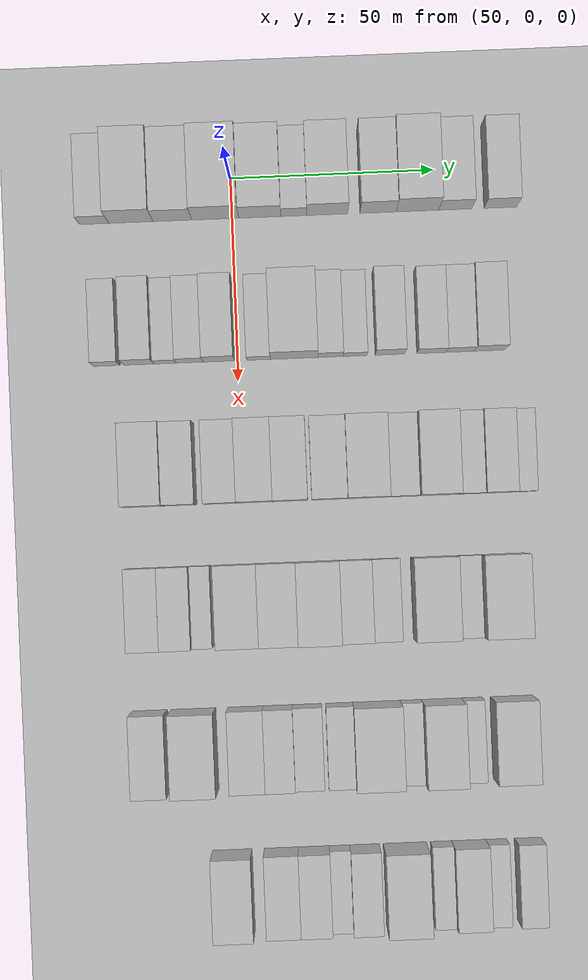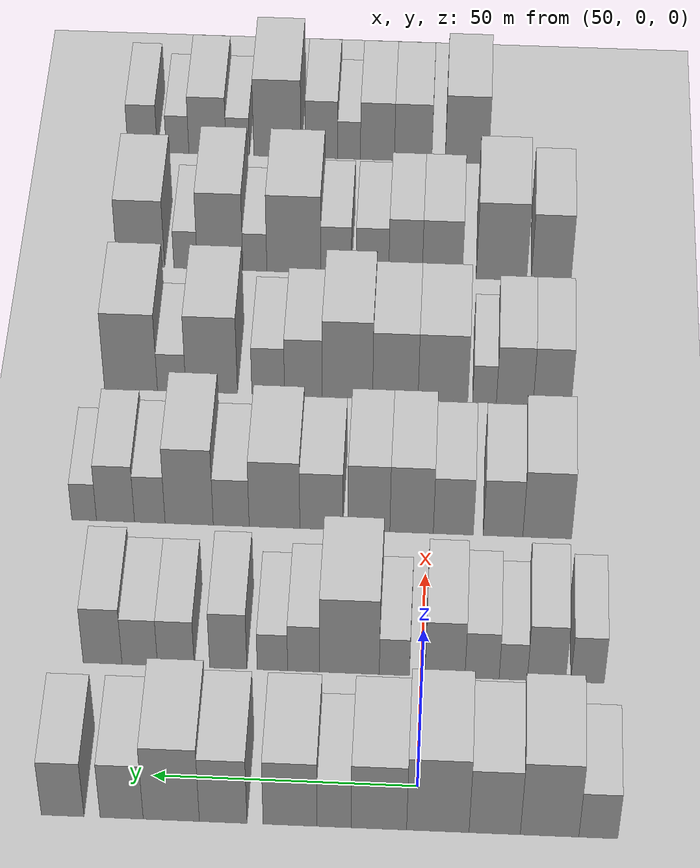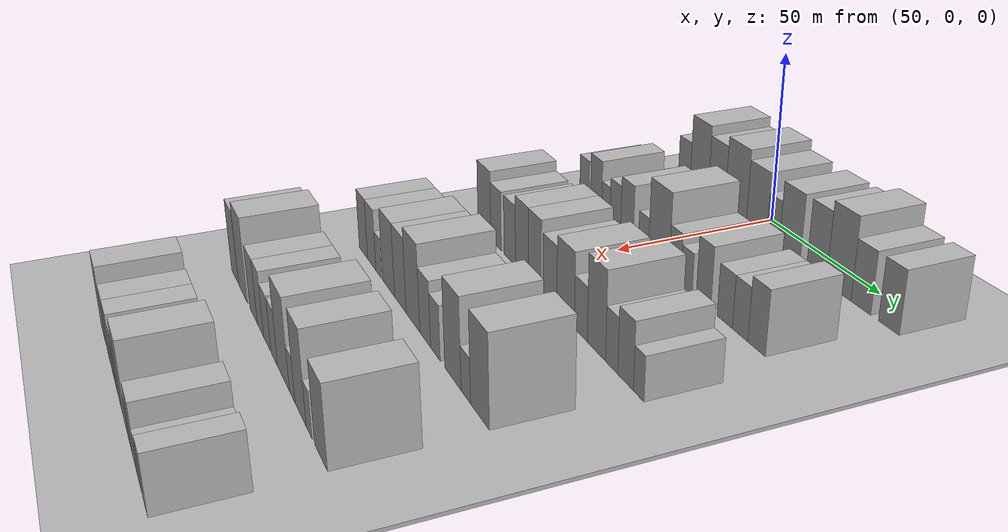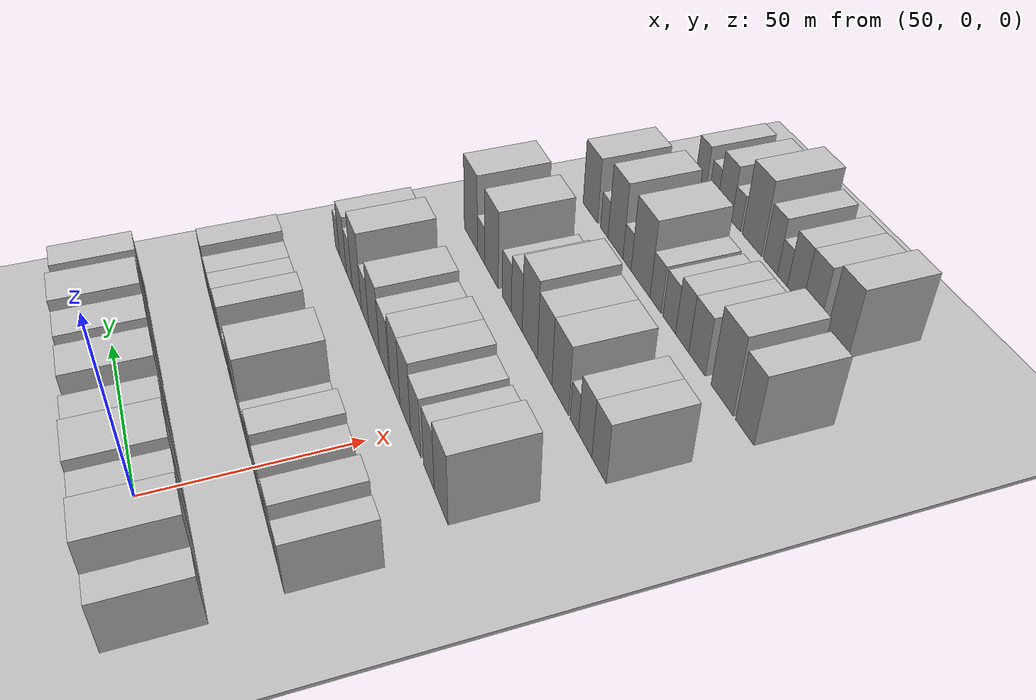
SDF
<sdf version="1.6">
 <world name="default">
  <include><name>ground_plane_1</name><uri>model://HANNAS_ground_plane</uri></include>
  <include>
   <name>ground_plane_2</name>
   <uri>model://HANNAS_ground_plane</uri>
   <pose>100 0 0  0 0 0</pose>
  </include>
  <model name="building_57">
   <static>1</static>
   <pose>50.0000 -33.7795 0 0.000000 0.000000 0.000000</pose>
   <link name="link">
    <pose>0 0 7.50 0 0 0</pose>
    <collision name="collision"><geometry><box><size>20.0000 7.2155 15.0000</size></box></geometry></collision>
    <visual name="visual">
     <cast_shadows>0</cast_shadows>
     <geometry><box><size>20.0000 7.2155 15.0000</size></box></geometry>
     <material>
      <script>
       <uri>model://HANNAS_wall/materials/scripts</uri>
       <uri>model://HANNAS_wall/materials/textures</uri>
       <name>vrc/HANNAS_wall</name>
      </script>
     </material>
    </visual>
   </link>
  </model>
  <model name="building_58">
   <static>1</static>
   <pose>50.0000 -24.7381 0 0.000000 0.000000 0.000000</pose>
   <link name="link">
    <pose>0 0 12.00 0 0 0</pose>
    <collision name="collision"><geometry><box><size>20.0000 10.8673 24.0000</size></box></geometry></collision>
    <visual name="visual">
     <cast_shadows>0</cast_shadows>
     <geometry><box><size>20.0000 10.8673 24.0000</size></box></geometry>
     <material>
      <script>
       <uri>model://HANNAS_wall/materials/scripts</uri>
       <uri>model://HANNAS_wall/materials/textures</uri>
       <name>vrc/HANNAS_wall</name>
      </script>
     </material>
    </visual>
   </link>
  </model>
  <model name="building_59">
   <static>1</static>
   <pose>50.0000 -14.5444 0 0.000000 0.000000 0.000000</pose>
   <link name="link">
    <pose>0 0 10.50 0 0 0</pose>
    <collision name="collision"><geometry><box><size>20.0000 9.5200 21.0000</size></box></geometry></collision>
    <visual name="visual">
     <cast_shadows>0</cast_shadows>
     <geometry><box><size>20.0000 9.5200 21.0000</size></box></geometry>
     <material>
      <script>
       <uri>model://HANNAS_wall/materials/scripts</uri>
       <uri>model://HANNAS_wall/materials/textures</uri>
       <name>vrc/HANNAS_wall</name>
      </script>
     </material>
    </visual>
   </link>
  </model>
  <model name="building_60">
   <static>1</static>
   <pose>50.0000 -3.9836 0 0.000000 0.000000 0.000000</pose>
   <link name="link">
    <pose>0 0 12.00 0 0 0</pose>
    <collision name="collision"><geometry><box><size>20.0000 11.6017 24.0000</size></box></geometry></collision>
    <visual name="visual">
     <cast_shadows>0</cast_shadows>
     <geometry><box><size>20.0000 11.6017 24.0000</size></box></geometry>
     <material>
      <script>
       <uri>model://HANNAS_wall/materials/scripts</uri>
       <uri>model://HANNAS_wall/materials/textures</uri>
       <name>vrc/HANNAS_wall</name>
      </script>
     </material>
    </visual>
   </link>
  </model>
  <model name="building_61">
   <static>1</static>
   <pose>50.0000 6.9874 0 0.000000 0.000000 0.000000</pose>
   <link name="link">
    <pose>0 0 10.50 0 0 0</pose>
    <collision name="collision"><geometry><box><size>20.0000 10.3402 21.0000</size></box></geometry></collision>
    <visual name="visual">
     <cast_shadows>0</cast_shadows>
     <geometry><box><size>20.0000 10.3402 21.0000</size></box></geometry>
     <material>
      <script>
       <uri>model://HANNAS_wall/materials/scripts</uri>
       <uri>model://HANNAS_wall/materials/textures</uri>
       <name>vrc/HANNAS_wall</name>
      </script>
     </material>
    </visual>
   </link>
  </model>
  <model name="building_62">
   <static>1</static>
   <pose>50.0000 15.3178 0 0.000000 0.000000 0.000000</pose>
   <link name="link">
    <pose>0 0 7.50 0 0 0</pose>
    <collision name="collision"><geometry><box><size>20.0000 6.3207 15.0000</size></box></geometry></collision>
    <visual name="visual">
     <cast_shadows>0</cast_shadows>
     <geometry><box><size>20.0000 6.3207 15.0000</size></box></geometry>
     <material>
      <script>
       <uri>model://HANNAS_wall/materials/scripts</uri>
       <uri>model://HANNAS_wall/materials/textures</uri>
       <name>vrc/HANNAS_wall</name>
      </script>
     </material>
    </visual>
   </link>
  </model>
  <model name="building_63">
   <static>1</static>
   <pose>50.0000 23.5081 0 0.000000 0.000000 0.000000</pose>
   <link name="link">
    <pose>0 0 10.50 0 0 0</pose>
    <collision name="collision"><geometry><box><size>20.0000 10.0599 21.0000</size></box></geometry></collision>
    <visual name="visual">
     <cast_shadows>0</cast_shadows>
     <geometry><box><size>20.0000 10.0599 21.0000</size></box></geometry>
     <material>
      <script>
       <uri>model://HANNAS_wall/materials/scripts</uri>
       <uri>model://HANNAS_wall/materials/textures</uri>
       <name>vrc/HANNAS_wall</name>
      </script>
     </material>
    </visual>
   </link>
  </model>
  <model name="building_64">
   <static>1</static>
   <pose>50.0000 35.9890 0 0.000000 0.000000 0.000000</pose>
   <link name="link">
    <pose>0 0 10.50 0 0 0</pose>
    <collision name="collision"><geometry><box><size>20.0000 8.9018 21.0000</size></box></geometry></collision>
    <visual name="visual">
     <cast_shadows>0</cast_shadows>
     <geometry><box><size>20.0000 8.9018 21.0000</size></box></geometry>
     <material>
      <script>
       <uri>model://HANNAS_wall/materials/scripts</uri>
       <uri>model://HANNAS_wall/materials/textures</uri>
       <name>vrc/HANNAS_wall</name>
      </script>
     </material>
    </visual>
   </link>
  </model>
  <model name="building_65">
   <static>1</static>
   <pose>50.0000 45.6892 0 0.000000 0.000000 0.000000</pose>
   <link name="link">
    <pose>0 0 12.00 0 0 0</pose>
    <collision name="collision"><geometry><box><size>20.0000 10.4987 24.0000</size></box></geometry></collision>
    <visual name="visual">
     <cast_shadows>0</cast_shadows>
     <geometry><box><size>20.0000 10.4987 24.0000</size></box></geometry>
     <material>
      <script>
       <uri>model://HANNAS_wall/materials/scripts</uri>
       <uri>model://HANNAS_wall/materials/textures</uri>
       <name>vrc/HANNAS_wall</name>
      </script>
     </material>
    </visual>
   </link>
  </model>
  <model name="building_66">
   <static>1</static>
   <pose>50.0000 54.9732 0 0.000000 0.000000 0.000000</pose>
   <link name="link">
    <pose>0 0 9.00 0 0 0</pose>
    <collision name="collision"><geometry><box><size>20.0000 8.0693 18.0000</size></box></geometry></collision>
    <visual name="visual">
     <cast_shadows>0</cast_shadows>
     <geometry><box><size>20.0000 8.0693 18.0000</size></box></geometry>
     <material>
      <script>
       <uri>model://HANNAS_wall/materials/scripts</uri>
       <uri>model://HANNAS_wall/materials/textures</uri>
       <name>vrc/HANNAS_wall</name>
      </script>
     </material>
    </visual>
   </link>
  </model>
  <model name="building_67">
   <static>1</static>
   <pose>50.0000 66.0095 0 0.000000 0.000000 0.000000</pose>
   <link name="link">
    <pose>0 0 9.00 0 0 0</pose>
    <collision name="collision"><geometry><box><size>20.0000 8.0032 18.0000</size></box></geometry></collision>
    <visual name="visual">
     <cast_shadows>0</cast_shadows>
     <geometry><box><size>20.0000 8.0032 18.0000</size></box></geometry>
     <material>
      <script>
       <uri>model://HANNAS_wall/materials/scripts</uri>
       <uri>model://HANNAS_wall/materials/textures</uri>
       <name>vrc/HANNAS_wall</name>
      </script>
     </material>
    </visual>
   </link>
  </model>
  <model name="building_188">
   <static>1</static>
   <pose>85.0000 -31.9822 0 0.000000 0.000000 0.000000</pose>
   <link name="link">
    <pose>0 0 7.50 0 0 0</pose>
    <collision name="collision"><geometry><box><size>20.0000 6.4308 15.0000</size></box></geometry></collision>
    <visual name="visual">
     <cast_shadows>0</cast_shadows>
     <geometry><box><size>20.0000 6.4308 15.0000</size></box></geometry>
     <material>
      <script>
       <uri>model://HANNAS_wall/materials/scripts</uri>
       <uri>model://HANNAS_wall/materials/textures</uri>
       <name>vrc/HANNAS_wall</name>
      </script>
     </material>
    </visual>
   </link>
  </model>
  <model name="building_189">
   <static>1</static>
   <pose>85.0000 -24.0772 0 0.000000 0.000000 0.000000</pose>
   <link name="link">
    <pose>0 0 9.00 0 0 0</pose>
    <collision name="collision"><geometry><box><size>20.0000 7.3792 18.0000</size></box></geometry></collision>
    <visual name="visual">
     <cast_shadows>0</cast_shadows>
     <geometry><box><size>20.0000 7.3792 18.0000</size></box></geometry>
     <material>
      <script>
       <uri>model://HANNAS_wall/materials/scripts</uri>
       <uri>model://HANNAS_wall/materials/textures</uri>
       <name>vrc/HANNAS_wall</name>
      </script>
     </material>
    </visual>
   </link>
  </model>
  <model name="building_190">
   <static>1</static>
   <pose>85.0000 -17.6620 0 0.000000 0.000000 0.000000</pose>
   <link name="link">
    <pose>0 0 6.00 0 0 0</pose>
    <collision name="collision"><geometry><box><size>20.0000 5.4511 12.0000</size></box></geometry></collision>
    <visual name="visual">
     <cast_shadows>0</cast_shadows>
     <geometry><box><size>20.0000 5.4511 12.0000</size></box></geometry>
     <material>
      <script>
       <uri>model://HANNAS_wall/materials/scripts</uri>
       <uri>model://HANNAS_wall/materials/textures</uri>
       <name>vrc/HANNAS_wall</name>
      </script>
     </material>
    </visual>
   </link>
  </model>
  <model name="building_191">
   <static>1</static>
   <pose>85.0000 -11.6268 0 0.000000 0.000000 0.000000</pose>
   <link name="link">
    <pose>0 0 7.50 0 0 0</pose>
    <collision name="collision"><geometry><box><size>20.0000 6.6194 15.0000</size></box></geometry></collision>
    <visual name="visual">
     <cast_shadows>0</cast_shadows>
     <geometry><box><size>20.0000 6.6194 15.0000</size></box></geometry>
     <material>
      <script>
       <uri>model://HANNAS_wall/materials/scripts</uri>
       <uri>model://HANNAS_wall/materials/textures</uri>
       <name>vrc/HANNAS_wall</name>
      </script>
     </material>
    </visual>
   </link>
  </model>
  <model name="building_192">
   <static>1</static>
   <pose>85.0000 -4.4633 0 0.000000 0.000000 0.000000</pose>
   <link name="link">
    <pose>0 0 9.00 0 0 0</pose>
    <collision name="collision"><geometry><box><size>20.0000 7.7076 18.0000</size></box></geometry></collision>
    <visual name="visual">
     <cast_shadows>0</cast_shadows>
     <geometry><box><size>20.0000 7.7076 18.0000</size></box></geometry>
     <material>
      <script>
       <uri>model://HANNAS_wall/materials/scripts</uri>
       <uri>model://HANNAS_wall/materials/textures</uri>
       <name>vrc/HANNAS_wall</name>
      </script>
     </material>
    </visual>
   </link>
  </model>
  <model name="building_193">
   <static>1</static>
   <pose>85.0000 5.3162 0 0.000000 0.000000 0.000000</pose>
   <link name="link">
    <pose>0 0 6.00 0 0 0</pose>
    <collision name="collision"><geometry><box><size>20.0000 5.8512 12.0000</size></box></geometry></collision>
    <visual name="visual">
     <cast_shadows>0</cast_shadows>
     <geometry><box><size>20.0000 5.8512 12.0000</size></box></geometry>
     <material>
      <script>
       <uri>model://HANNAS_wall/materials/scripts</uri>
       <uri>model://HANNAS_wall/materials/textures</uri>
       <name>vrc/HANNAS_wall</name>
      </script>
     </material>
    </visual>
   </link>
  </model>
  <model name="building_194">
   <static>1</static>
   <pose>85.0000 14.0239 0 0.000000 0.000000 0.000000</pose>
   <link name="link">
    <pose>0 0 12.00 0 0 0</pose>
    <collision name="collision"><geometry><box><size>20.0000 11.5642 24.0000</size></box></geometry></collision>
    <visual name="visual">
     <cast_shadows>0</cast_shadows>
     <geometry><box><size>20.0000 11.5642 24.0000</size></box></geometry>
     <material>
      <script>
       <uri>model://HANNAS_wall/materials/scripts</uri>
       <uri>model://HANNAS_wall/materials/textures</uri>
       <name>vrc/HANNAS_wall</name>
      </script>
     </material>
    </visual>
   </link>
  </model>
  <model name="building_195">
   <static>1</static>
   <pose>85.0000 22.8988 0 0.000000 0.000000 0.000000</pose>
   <link name="link">
    <pose>0 0 7.50 0 0 0</pose>
    <collision name="collision"><geometry><box><size>20.0000 6.1858 15.0000</size></box></geometry></collision>
    <visual name="visual">
     <cast_shadows>0</cast_shadows>
     <geometry><box><size>20.0000 6.1858 15.0000</size></box></geometry>
     <material>
      <script>
       <uri>model://HANNAS_wall/materials/scripts</uri>
       <uri>model://HANNAS_wall/materials/textures</uri>
       <name>vrc/HANNAS_wall</name>
      </script>
     </material>
    </visual>
   </link>
  </model>
  <model name="building_196">
   <static>1</static>
   <pose>85.0000 28.9388 0 0.000000 0.000000 0.000000</pose>
   <link name="link">
    <pose>0 0 6.00 0 0 0</pose>
    <collision name="collision"><geometry><box><size>20.0000 5.8942 12.0000</size></box></geometry></collision>
    <visual name="visual">
     <cast_shadows>0</cast_shadows>
     <geometry><box><size>20.0000 5.8942 12.0000</size></box></geometry>
     <material>
      <script>
       <uri>model://HANNAS_wall/materials/scripts</uri>
       <uri>model://HANNAS_wall/materials/textures</uri>
       <name>vrc/HANNAS_wall</name>
      </script>
     </material>
    </visual>
   </link>
  </model>
  <model name="building_197">
   <static>1</static>
   <pose>85.0000 37.4988 0 0.000000 0.000000 0.000000</pose>
   <link name="link">
    <pose>0 0 9.00 0 0 0</pose>
    <collision name="collision"><geometry><box><size>20.0000 7.2258 18.0000</size></box></geometry></collision>
    <visual name="visual">
     <cast_shadows>0</cast_shadows>
     <geometry><box><size>20.0000 7.2258 18.0000</size></box></geometry>
     <material>
      <script>
       <uri>model://HANNAS_wall/materials/scripts</uri>
       <uri>model://HANNAS_wall/materials/textures</uri>
       <name>vrc/HANNAS_wall</name>
      </script>
     </material>
    </visual>
   </link>
  </model>
  <model name="building_198">
   <static>1</static>
   <pose>85.0000 47.6861 0 0.000000 0.000000 0.000000</pose>
   <link name="link">
    <pose>0 0 7.50 0 0 0</pose>
    <collision name="collision"><geometry><box><size>20.0000 7.1488 15.0000</size></box></geometry></collision>
    <visual name="visual">
     <cast_shadows>0</cast_shadows>
     <geometry><box><size>20.0000 7.1488 15.0000</size></box></geometry>
     <material>
      <script>
       <uri>model://HANNAS_wall/materials/scripts</uri>
       <uri>model://HANNAS_wall/materials/textures</uri>
       <name>vrc/HANNAS_wall</name>
      </script>
     </material>
    </visual>
   </link>
  </model>
  <model name="building_199">
   <static>1</static>
   <pose>85.0000 54.7174 0 0.000000 0.000000 0.000000</pose>
   <link name="link">
    <pose>0 0 7.50 0 0 0</pose>
    <collision name="collision"><geometry><box><size>20.0000 6.9136 15.0000</size></box></geometry></collision>
    <visual name="visual">
     <cast_shadows>0</cast_shadows>
     <geometry><box><size>20.0000 6.9136 15.0000</size></box></geometry>
     <material>
      <script>
       <uri>model://HANNAS_wall/materials/scripts</uri>
       <uri>model://HANNAS_wall/materials/textures</uri>
       <name>vrc/HANNAS_wall</name>
      </script>
     </material>
    </visual>
   </link>
  </model>
  <model name="building_200">
   <static>1</static>
   <pose>85.0000 61.9534 0 0.000000 0.000000 0.000000</pose>
   <link name="link">
    <pose>0 0 9.00 0 0 0</pose>
    <collision name="collision"><geometry><box><size>20.0000 7.5585 18.0000</size></box></geometry></collision>
    <visual name="visual">
     <cast_shadows>0</cast_shadows>
     <geometry><box><size>20.0000 7.5585 18.0000</size></box></geometry>
     <material>
      <script>
       <uri>model://HANNAS_wall/materials/scripts</uri>
       <uri>model://HANNAS_wall/materials/textures</uri>
       <name>vrc/HANNAS_wall</name>
      </script>
     </material>
    </visual>
   </link>
  </model>
  <model name="building_317">
   <static>1</static>
   <pose>120.0000 -24.1386 0 0.000000 0.000000 0.000000</pose>
   <link name="link">
    <pose>0 0 10.50 0 0 0</pose>
    <collision name="collision"><geometry><box><size>20.0000 9.7765 21.0000</size></box></geometry></collision>
    <visual name="visual">
     <cast_shadows>0</cast_shadows>
     <geometry><box><size>20.0000 9.7765 21.0000</size></box></geometry>
     <material>
      <script>
       <uri>model://HANNAS_wall/materials/scripts</uri>
       <uri>model://HANNAS_wall/materials/textures</uri>
       <name>vrc/HANNAS_wall</name>
      </script>
     </material>
    </visual>
   </link>
  </model>
  <model name="building_318">
   <static>1</static>
   <pose>120.0000 -15.2830 0 0.000000 0.000000 0.000000</pose>
   <link name="link">
    <pose>0 0 9.00 0 0 0</pose>
    <collision name="collision"><geometry><box><size>20.0000 7.9347 18.0000</size></box></geometry></collision>
    <visual name="visual">
     <cast_shadows>0</cast_shadows>
     <geometry><box><size>20.0000 7.9347 18.0000</size></box></geometry>
     <material>
      <script>
       <uri>model://HANNAS_wall/materials/scripts</uri>
       <uri>model://HANNAS_wall/materials/textures</uri>
       <name>vrc/HANNAS_wall</name>
      </script>
     </material>
    </visual>
   </link>
  </model>
  <model name="building_319">
   <static>1</static>
   <pose>120.0000 -5.3021 0 0.000000 0.000000 0.000000</pose>
   <link name="link">
    <pose>0 0 9.00 0 0 0</pose>
    <collision name="collision"><geometry><box><size>20.0000 8.0272 18.0000</size></box></geometry></collision>
    <visual name="visual">
     <cast_shadows>0</cast_shadows>
     <geometry><box><size>20.0000 8.0272 18.0000</size></box></geometry>
     <material>
      <script>
       <uri>model://HANNAS_wall/materials/scripts</uri>
       <uri>model://HANNAS_wall/materials/textures</uri>
       <name>vrc/HANNAS_wall</name>
      </script>
     </material>
    </visual>
   </link>
  </model>
  <model name="building_320">
   <static>1</static>
   <pose>120.0000 3.0778 0 0.000000 0.000000 0.000000</pose>
   <link name="link">
    <pose>0 0 10.50 0 0 0</pose>
    <collision name="collision"><geometry><box><size>20.0000 8.7325 21.0000</size></box></geometry></collision>
    <visual name="visual">
     <cast_shadows>0</cast_shadows>
     <geometry><box><size>20.0000 8.7325 21.0000</size></box></geometry>
     <material>
      <script>
       <uri>model://HANNAS_wall/materials/scripts</uri>
       <uri>model://HANNAS_wall/materials/textures</uri>
       <name>vrc/HANNAS_wall</name>
      </script>
     </material>
    </visual>
   </link>
  </model>
  <model name="building_321">
   <static>1</static>
   <pose>120.0000 11.6708 0 0.000000 0.000000 0.000000</pose>
   <link name="link">
    <pose>0 0 10.50 0 0 0</pose>
    <collision name="collision"><geometry><box><size>20.0000 8.4535 21.0000</size></box></geometry></collision>
    <visual name="visual">
     <cast_shadows>0</cast_shadows>
     <geometry><box><size>20.0000 8.4535 21.0000</size></box></geometry>
     <material>
      <script>
       <uri>model://HANNAS_wall/materials/scripts</uri>
       <uri>model://HANNAS_wall/materials/textures</uri>
       <name>vrc/HANNAS_wall</name>
      </script>
     </material>
    </visual>
   </link>
  </model>
  <model name="building_322">
   <static>1</static>
   <pose>120.0000 21.2271 0 0.000000 0.000000 0.000000</pose>
   <link name="link">
    <pose>0 0 9.00 0 0 0</pose>
    <collision name="collision"><geometry><box><size>20.0000 8.6592 18.0000</size></box></geometry></collision>
    <visual name="visual">
     <cast_shadows>0</cast_shadows>
     <geometry><box><size>20.0000 8.6592 18.0000</size></box></geometry>
     <material>
      <script>
       <uri>model://HANNAS_wall/materials/scripts</uri>
       <uri>model://HANNAS_wall/materials/textures</uri>
       <name>vrc/HANNAS_wall</name>
      </script>
     </material>
    </visual>
   </link>
  </model>
  <model name="building_323">
   <static>1</static>
   <pose>120.0000 30.6602 0 0.000000 0.000000 0.000000</pose>
   <link name="link">
    <pose>0 0 10.50 0 0 0</pose>
    <collision name="collision"><geometry><box><size>20.0000 10.2070 21.0000</size></box></geometry></collision>
    <visual name="visual">
     <cast_shadows>0</cast_shadows>
     <geometry><box><size>20.0000 10.2070 21.0000</size></box></geometry>
     <material>
      <script>
       <uri>model://HANNAS_wall/materials/scripts</uri>
       <uri>model://HANNAS_wall/materials/textures</uri>
       <name>vrc/HANNAS_wall</name>
      </script>
     </material>
    </visual>
   </link>
  </model>
  <model name="building_324">
   <static>1</static>
   <pose>120.0000 39.3857 0 0.000000 0.000000 0.000000</pose>
   <link name="link">
    <pose>0 0 7.50 0 0 0</pose>
    <collision name="collision"><geometry><box><size>20.0000 7.2439 15.0000</size></box></geometry></collision>
    <visual name="visual">
     <cast_shadows>0</cast_shadows>
     <geometry><box><size>20.0000 7.2439 15.0000</size></box></geometry>
     <material>
      <script>
       <uri>model://HANNAS_wall/materials/scripts</uri>
       <uri>model://HANNAS_wall/materials/textures</uri>
       <name>vrc/HANNAS_wall</name>
      </script>
     </material>
    </visual>
   </link>
  </model>
  <model name="building_325">
   <static>1</static>
   <pose>120.0000 47.8680 0 0.000000 0.000000 0.000000</pose>
   <link name="link">
    <pose>0 0 12.00 0 0 0</pose>
    <collision name="collision"><geometry><box><size>20.0000 9.7207 24.0000</size></box></geometry></collision>
    <visual name="visual">
     <cast_shadows>0</cast_shadows>
     <geometry><box><size>20.0000 9.7207 24.0000</size></box></geometry>
     <material>
      <script>
       <uri>model://HANNAS_wall/materials/scripts</uri>
       <uri>model://HANNAS_wall/materials/textures</uri>
       <name>vrc/HANNAS_wall</name>
      </script>
     </material>
    </visual>
   </link>
  </model>
  <model name="building_326">
   <static>1</static>
   <pose>120.0000 55.8173 0 0.000000 0.000000 0.000000</pose>
   <link name="link">
    <pose>0 0 7.50 0 0 0</pose>
    <collision name="collision"><geometry><box><size>20.0000 6.1780 15.0000</size></box></geometry></collision>
    <visual name="visual">
     <cast_shadows>0</cast_shadows>
     <geometry><box><size>20.0000 6.1780 15.0000</size></box></geometry>
     <material>
      <script>
       <uri>model://HANNAS_wall/materials/scripts</uri>
       <uri>model://HANNAS_wall/materials/textures</uri>
       <name>vrc/HANNAS_wall</name>
      </script>
     </material>
    </visual>
   </link>
  </model>
  <model name="building_327">
   <static>1</static>
   <pose>120.0000 62.7513 0 0.000000 0.000000 0.000000</pose>
   <link name="link">
    <pose>0 0 9.00 0 0 0</pose>
    <collision name="collision"><geometry><box><size>20.0000 7.6900 18.0000</size></box></geometry></collision>
    <visual name="visual">
     <cast_shadows>0</cast_shadows>
     <geometry><box><size>20.0000 7.6900 18.0000</size></box></geometry>
     <material>
      <script>
       <uri>model://HANNAS_wall/materials/scripts</uri>
       <uri>model://HANNAS_wall/materials/textures</uri>
       <name>vrc/HANNAS_wall</name>
      </script>
     </material>
    </visual>
   </link>
  </model>
  <model name="building_328">
   <static>1</static>
   <pose>120.0000 69.0967 0 0.000000 0.000000 0.000000</pose>
   <link name="link">
    <pose>0 0 6.00 0 0 0</pose>
    <collision name="collision"><geometry><box><size>20.0000 5.0007 12.0000</size></box></geometry></collision>
    <visual name="visual">
     <cast_shadows>0</cast_shadows>
     <geometry><box><size>20.0000 5.0007 12.0000</size></box></geometry>
     <material>
      <script>
       <uri>model://HANNAS_wall/materials/scripts</uri>
       <uri>model://HANNAS_wall/materials/textures</uri>
       <name>vrc/HANNAS_wall</name>
      </script>
     </material>
    </visual>
   </link>
  </model>
  <model name="building_441">
   <static>1</static>
   <pose>155.0000 -25.0882 0 0.000000 0.000000 0.000000</pose>
   <link name="link">
    <pose>0 0 9.00 0 0 0</pose>
    <collision name="collision"><geometry><box><size>20.0000 7.8861 18.0000</size></box></geometry></collision>
    <visual name="visual">
     <cast_shadows>0</cast_shadows>
     <geometry><box><size>20.0000 7.8861 18.0000</size></box></geometry>
     <material>
      <script>
       <uri>model://HANNAS_wall/materials/scripts</uri>
       <uri>model://HANNAS_wall/materials/textures</uri>
       <name>vrc/HANNAS_wall</name>
      </script>
     </material>
    </visual>
   </link>
  </model>
  <model name="building_442">
   <static>1</static>
   <pose>155.0000 -17.3175 0 0.000000 0.000000 0.000000</pose>
   <link name="link">
    <pose>0 0 9.00 0 0 0</pose>
    <collision name="collision"><geometry><box><size>20.0000 7.6551 18.0000</size></box></geometry></collision>
    <visual name="visual">
     <cast_shadows>0</cast_shadows>
     <geometry><box><size>20.0000 7.6551 18.0000</size></box></geometry>
     <material>
      <script>
       <uri>model://HANNAS_wall/materials/scripts</uri>
       <uri>model://HANNAS_wall/materials/textures</uri>
       <name>vrc/HANNAS_wall</name>
      </script>
     </material>
    </visual>
   </link>
  </model>
  <model name="building_443">
   <static>1</static>
   <pose>155.0000 -11.0124 0 0.000000 0.000000 0.000000</pose>
   <link name="link">
    <pose>0 0 6.00 0 0 0</pose>
    <collision name="collision"><geometry><box><size>20.0000 4.9551 12.0000</size></box></geometry></collision>
    <visual name="visual">
     <cast_shadows>0</cast_shadows>
     <geometry><box><size>20.0000 4.9551 12.0000</size></box></geometry>
     <material>
      <script>
       <uri>model://HANNAS_wall/materials/scripts</uri>
       <uri>model://HANNAS_wall/materials/textures</uri>
       <name>vrc/HANNAS_wall</name>
      </script>
     </material>
    </visual>
   </link>
  </model>
  <model name="building_444">
   <static>1</static>
   <pose>155.0000 -2.3592 0 0.000000 0.000000 0.000000</pose>
   <link name="link">
    <pose>0 0 10.50 0 0 0</pose>
    <collision name="collision"><geometry><box><size>20.0000 10.3512 21.0000</size></box></geometry></collision>
    <visual name="visual">
     <cast_shadows>0</cast_shadows>
     <geometry><box><size>20.0000 10.3512 21.0000</size></box></geometry>
     <material>
      <script>
       <uri>model://HANNAS_wall/materials/scripts</uri>
       <uri>model://HANNAS_wall/materials/textures</uri>
       <name>vrc/HANNAS_wall</name>
      </script>
     </material>
    </visual>
   </link>
  </model>
  <model name="building_445">
   <static>1</static>
   <pose>155.0000 7.5524 0 0.000000 0.000000 0.000000</pose>
   <link name="link">
    <pose>0 0 10.50 0 0 0</pose>
    <collision name="collision"><geometry><box><size>20.0000 9.4721 21.0000</size></box></geometry></collision>
    <visual name="visual">
     <cast_shadows>0</cast_shadows>
     <geometry><box><size>20.0000 9.4721 21.0000</size></box></geometry>
     <material>
      <script>
       <uri>model://HANNAS_wall/materials/scripts</uri>
       <uri>model://HANNAS_wall/materials/textures</uri>
       <name>vrc/HANNAS_wall</name>
      </script>
     </material>
    </visual>
   </link>
  </model>
  <model name="building_446">
   <static>1</static>
   <pose>155.0000 17.5526 0 0.000000 0.000000 0.000000</pose>
   <link name="link">
    <pose>0 0 12.00 0 0 0</pose>
    <collision name="collision"><geometry><box><size>20.0000 10.5283 24.0000</size></box></geometry></collision>
    <visual name="visual">
     <cast_shadows>0</cast_shadows>
     <geometry><box><size>20.0000 10.5283 24.0000</size></box></geometry>
     <material>
      <script>
       <uri>model://HANNAS_wall/materials/scripts</uri>
       <uri>model://HANNAS_wall/materials/textures</uri>
       <name>vrc/HANNAS_wall</name>
      </script>
     </material>
    </visual>
   </link>
  </model>
  <model name="building_447">
   <static>1</static>
   <pose>155.0000 26.7485 0 0.000000 0.000000 0.000000</pose>
   <link name="link">
    <pose>0 0 9.00 0 0 0</pose>
    <collision name="collision"><geometry><box><size>20.0000 7.8636 18.0000</size></box></geometry></collision>
    <visual name="visual">
     <cast_shadows>0</cast_shadows>
     <geometry><box><size>20.0000 7.8636 18.0000</size></box></geometry>
     <material>
      <script>
       <uri>model://HANNAS_wall/materials/scripts</uri>
       <uri>model://HANNAS_wall/materials/textures</uri>
       <name>vrc/HANNAS_wall</name>
      </script>
     </material>
    </visual>
   </link>
  </model>
  <model name="building_448">
   <static>1</static>
   <pose>155.0000 34.0949 0 0.000000 0.000000 0.000000</pose>
   <link name="link">
    <pose>0 0 7.50 0 0 0</pose>
    <collision name="collision"><geometry><box><size>20.0000 6.8292 15.0000</size></box></geometry></collision>
    <visual name="visual">
     <cast_shadows>0</cast_shadows>
     <geometry><box><size>20.0000 6.8292 15.0000</size></box></geometry>
     <material>
      <script>
       <uri>model://HANNAS_wall/materials/scripts</uri>
       <uri>model://HANNAS_wall/materials/textures</uri>
       <name>vrc/HANNAS_wall</name>
      </script>
     </material>
    </visual>
   </link>
  </model>
  <model name="building_449">
   <static>1</static>
   <pose>155.0000 45.9140 0 0.000000 0.000000 0.000000</pose>
   <link name="link">
    <pose>0 0 12.00 0 0 0</pose>
    <collision name="collision"><geometry><box><size>20.0000 10.8089 24.0000</size></box></geometry></collision>
    <visual name="visual">
     <cast_shadows>0</cast_shadows>
     <geometry><box><size>20.0000 10.8089 24.0000</size></box></geometry>
     <material>
      <script>
       <uri>model://HANNAS_wall/materials/scripts</uri>
       <uri>model://HANNAS_wall/materials/textures</uri>
       <name>vrc/HANNAS_wall</name>
      </script>
     </material>
    </visual>
   </link>
  </model>
  <model name="building_450">
   <static>1</static>
   <pose>155.0000 54.2992 0 0.000000 0.000000 0.000000</pose>
   <link name="link">
    <pose>0 0 6.00 0 0 0</pose>
    <collision name="collision"><geometry><box><size>20.0000 5.9615 12.0000</size></box></geometry></collision>
    <visual name="visual">
     <cast_shadows>0</cast_shadows>
     <geometry><box><size>20.0000 5.9615 12.0000</size></box></geometry>
     <material>
      <script>
       <uri>model://HANNAS_wall/materials/scripts</uri>
       <uri>model://HANNAS_wall/materials/textures</uri>
       <name>vrc/HANNAS_wall</name>
      </script>
     </material>
    </visual>
   </link>
  </model>
  <model name="building_451">
   <static>1</static>
   <pose>155.0000 62.8240 0 0.000000 0.000000 0.000000</pose>
   <link name="link">
    <pose>0 0 12.00 0 0 0</pose>
    <collision name="collision"><geometry><box><size>20.0000 11.0880 24.0000</size></box></geometry></collision>
    <visual name="visual">
     <cast_shadows>0</cast_shadows>
     <geometry><box><size>20.0000 11.0880 24.0000</size></box></geometry>
     <material>
      <script>
       <uri>model://HANNAS_wall/materials/scripts</uri>
       <uri>model://HANNAS_wall/materials/textures</uri>
       <name>vrc/HANNAS_wall</name>
      </script>
     </material>
    </visual>
   </link>
  </model>
  <model name="building_565">
   <static>1</static>
   <pose>190.0000 -24.8154 0 0.000000 0.000000 0.000000</pose>
   <link name="link">
    <pose>0 0 10.50 0 0 0</pose>
    <collision name="collision"><geometry><box><size>20.0000 8.5407 21.0000</size></box></geometry></collision>
    <visual name="visual">
     <cast_shadows>0</cast_shadows>
     <geometry><box><size>20.0000 8.5407 21.0000</size></box></geometry>
     <material>
      <script>
       <uri>model://HANNAS_wall/materials/scripts</uri>
       <uri>model://HANNAS_wall/materials/textures</uri>
       <name>vrc/HANNAS_wall</name>
      </script>
     </material>
    </visual>
   </link>
  </model>
  <model name="building_566">
   <static>1</static>
   <pose>190.0000 -14.1067 0 0.000000 0.000000 0.000000</pose>
   <link name="link">
    <pose>0 0 12.00 0 0 0</pose>
    <collision name="collision"><geometry><box><size>20.0000 10.8768 24.0000</size></box></geometry></collision>
    <visual name="visual">
     <cast_shadows>0</cast_shadows>
     <geometry><box><size>20.0000 10.8768 24.0000</size></box></geometry>
     <material>
      <script>
       <uri>model://HANNAS_wall/materials/scripts</uri>
       <uri>model://HANNAS_wall/materials/textures</uri>
       <name>vrc/HANNAS_wall</name>
      </script>
     </material>
    </visual>
   </link>
  </model>
  <model name="building_567">
   <static>1</static>
   <pose>190.0000 -1.3482 0 0.000000 0.000000 0.000000</pose>
   <link name="link">
    <pose>0 0 9.00 0 0 0</pose>
    <collision name="collision"><geometry><box><size>20.0000 8.6400 18.0000</size></box></geometry></collision>
    <visual name="visual">
     <cast_shadows>0</cast_shadows>
     <geometry><box><size>20.0000 8.6400 18.0000</size></box></geometry>
     <material>
      <script>
       <uri>model://HANNAS_wall/materials/scripts</uri>
       <uri>model://HANNAS_wall/materials/textures</uri>
       <name>vrc/HANNAS_wall</name>
      </script>
     </material>
    </visual>
   </link>
  </model>
  <model name="building_568">
   <static>1</static>
   <pose>190.0000 6.5801 0 0.000000 0.000000 0.000000</pose>
   <link name="link">
    <pose>0 0 9.00 0 0 0</pose>
    <collision name="collision"><geometry><box><size>20.0000 7.2166 18.0000</size></box></geometry></collision>
    <visual name="visual">
     <cast_shadows>0</cast_shadows>
     <geometry><box><size>20.0000 7.2166 18.0000</size></box></geometry>
     <material>
      <script>
       <uri>model://HANNAS_wall/materials/scripts</uri>
       <uri>model://HANNAS_wall/materials/textures</uri>
       <name>vrc/HANNAS_wall</name>
      </script>
     </material>
    </visual>
   </link>
  </model>
  <model name="building_569">
   <static>1</static>
   <pose>190.0000 13.7321 0 0.000000 0.000000 0.000000</pose>
   <link name="link">
    <pose>0 0 7.50 0 0 0</pose>
    <collision name="collision"><geometry><box><size>20.0000 7.0875 15.0000</size></box></geometry></collision>
    <visual name="visual">
     <cast_shadows>0</cast_shadows>
     <geometry><box><size>20.0000 7.0875 15.0000</size></box></geometry>
     <material>
      <script>
       <uri>model://HANNAS_wall/materials/scripts</uri>
       <uri>model://HANNAS_wall/materials/textures</uri>
       <name>vrc/HANNAS_wall</name>
      </script>
     </material>
    </visual>
   </link>
  </model>
  <model name="building_570">
   <static>1</static>
   <pose>190.0000 21.5777 0 0.000000 0.000000 0.000000</pose>
   <link name="link">
    <pose>0 0 7.50 0 0 0</pose>
    <collision name="collision"><geometry><box><size>20.0000 6.6036 15.0000</size></box></geometry></collision>
    <visual name="visual">
     <cast_shadows>0</cast_shadows>
     <geometry><box><size>20.0000 6.6036 15.0000</size></box></geometry>
     <material>
      <script>
       <uri>model://HANNAS_wall/materials/scripts</uri>
       <uri>model://HANNAS_wall/materials/textures</uri>
       <name>vrc/HANNAS_wall</name>
      </script>
     </material>
    </visual>
   </link>
  </model>
  <model name="building_571">
   <static>1</static>
   <pose>190.0000 30.7127 0 0.000000 0.000000 0.000000</pose>
   <link name="link">
    <pose>0 0 12.00 0 0 0</pose>
    <collision name="collision"><geometry><box><size>20.0000 11.6665 24.0000</size></box></geometry></collision>
    <visual name="visual">
     <cast_shadows>0</cast_shadows>
     <geometry><box><size>20.0000 11.6665 24.0000</size></box></geometry>
     <material>
      <script>
       <uri>model://HANNAS_wall/materials/scripts</uri>
       <uri>model://HANNAS_wall/materials/textures</uri>
       <name>vrc/HANNAS_wall</name>
      </script>
     </material>
    </visual>
   </link>
  </model>
  <model name="building_572">
   <static>1</static>
   <pose>190.0000 39.1361 0 0.000000 0.000000 0.000000</pose>
   <link name="link">
    <pose>0 0 6.00 0 0 0</pose>
    <collision name="collision"><geometry><box><size>20.0000 5.1804 12.0000</size></box></geometry></collision>
    <visual name="visual">
     <cast_shadows>0</cast_shadows>
     <geometry><box><size>20.0000 5.1804 12.0000</size></box></geometry>
     <material>
      <script>
       <uri>model://HANNAS_wall/materials/scripts</uri>
       <uri>model://HANNAS_wall/materials/textures</uri>
       <name>vrc/HANNAS_wall</name>
      </script>
     </material>
    </visual>
   </link>
  </model>
  <model name="building_573">
   <static>1</static>
   <pose>190.0000 46.6629 0 0.000000 0.000000 0.000000</pose>
   <link name="link">
    <pose>0 0 12.00 0 0 0</pose>
    <collision name="collision"><geometry><box><size>20.0000 9.8731 24.0000</size></box></geometry></collision>
    <visual name="visual">
     <cast_shadows>0</cast_shadows>
     <geometry><box><size>20.0000 9.8731 24.0000</size></box></geometry>
     <material>
      <script>
       <uri>model://HANNAS_wall/materials/scripts</uri>
       <uri>model://HANNAS_wall/materials/textures</uri>
       <name>vrc/HANNAS_wall</name>
      </script>
     </material>
    </visual>
   </link>
  </model>
  <model name="building_574">
   <static>1</static>
   <pose>190.0000 54.1485 0 0.000000 0.000000 0.000000</pose>
   <link name="link">
    <pose>0 0 6.00 0 0 0</pose>
    <collision name="collision"><geometry><box><size>20.0000 5.0982 12.0000</size></box></geometry></collision>
    <visual name="visual">
     <cast_shadows>0</cast_shadows>
     <geometry><box><size>20.0000 5.0982 12.0000</size></box></geometry>
     <material>
      <script>
       <uri>model://HANNAS_wall/materials/scripts</uri>
       <uri>model://HANNAS_wall/materials/textures</uri>
       <name>vrc/HANNAS_wall</name>
      </script>
     </material>
    </visual>
   </link>
  </model>
  <model name="building_575">
   <static>1</static>
   <pose>190.0000 63.8779 0 0.000000 0.000000 0.000000</pose>
   <link name="link">
    <pose>0 0 10.50 0 0 0</pose>
    <collision name="collision"><geometry><box><size>20.0000 10.3606 21.0000</size></box></geometry></collision>
    <visual name="visual">
     <cast_shadows>0</cast_shadows>
     <geometry><box><size>20.0000 10.3606 21.0000</size></box></geometry>
     <material>
      <script>
       <uri>model://HANNAS_wall/materials/scripts</uri>
       <uri>model://HANNAS_wall/materials/textures</uri>
       <name>vrc/HANNAS_wall</name>
      </script>
     </material>
    </visual>
   </link>
  </model>
  <model name="building_684">
   <static>1</static>
   <pose>225.0000 -5.9861 0 0.000000 0.000000 0.000000</pose>
   <link name="link">
    <pose>0 0 10.50 0 0 0</pose>
    <collision name="collision"><geometry><box><size>20.0000 9.6641 21.0000</size></box></geometry></collision>
    <visual name="visual">
     <cast_shadows>0</cast_shadows>
     <geometry><box><size>20.0000 9.6641 21.0000</size></box></geometry>
     <material>
      <script>
       <uri>model://HANNAS_wall/materials/scripts</uri>
       <uri>model://HANNAS_wall/materials/textures</uri>
       <name>vrc/HANNAS_wall</name>
      </script>
     </material>
    </visual>
   </link>
  </model>
  <model name="building_685">
   <static>1</static>
   <pose>225.0000 6.0149 0 0.000000 0.000000 0.000000</pose>
   <link name="link">
    <pose>0 0 9.00 0 0 0</pose>
    <collision name="collision"><geometry><box><size>20.0000 8.3378 18.0000</size></box></geometry></collision>
    <visual name="visual">
     <cast_shadows>0</cast_shadows>
     <geometry><box><size>20.0000 8.3378 18.0000</size></box></geometry>
     <material>
      <script>
       <uri>model://HANNAS_wall/materials/scripts</uri>
       <uri>model://HANNAS_wall/materials/textures</uri>
       <name>vrc/HANNAS_wall</name>
      </script>
     </material>
    </visual>
   </link>
  </model>
  <model name="building_686">
   <static>1</static>
   <pose>225.0000 13.9903 0 0.000000 0.000000 0.000000</pose>
   <link name="link">
    <pose>0 0 9.00 0 0 0</pose>
    <collision name="collision"><geometry><box><size>20.0000 7.6130 18.0000</size></box></geometry></collision>
    <visual name="visual">
     <cast_shadows>0</cast_shadows>
     <geometry><box><size>20.0000 7.6130 18.0000</size></box></geometry>
     <material>
      <script>
       <uri>model://HANNAS_wall/materials/scripts</uri>
       <uri>model://HANNAS_wall/materials/textures</uri>
       <name>vrc/HANNAS_wall</name>
      </script>
     </material>
    </visual>
   </link>
  </model>
  <model name="building_687">
   <static>1</static>
   <pose>225.0000 20.3279 0 0.000000 0.000000 0.000000</pose>
   <link name="link">
    <pose>0 0 6.00 0 0 0</pose>
    <collision name="collision"><geometry><box><size>20.0000 5.0621 12.0000</size></box></geometry></collision>
    <visual name="visual">
     <cast_shadows>0</cast_shadows>
     <geometry><box><size>20.0000 5.0621 12.0000</size></box></geometry>
     <material>
      <script>
       <uri>model://HANNAS_wall/materials/scripts</uri>
       <uri>model://HANNAS_wall/materials/textures</uri>
       <name>vrc/HANNAS_wall</name>
      </script>
     </material>
    </visual>
   </link>
  </model>
  <model name="building_688">
   <static>1</static>
   <pose>225.0000 26.4726 0 0.000000 0.000000 0.000000</pose>
   <link name="link">
    <pose>0 0 9.00 0 0 0</pose>
    <collision name="collision"><geometry><box><size>20.0000 7.2273 18.0000</size></box></geometry></collision>
    <visual name="visual">
     <cast_shadows>0</cast_shadows>
     <geometry><box><size>20.0000 7.2273 18.0000</size></box></geometry>
     <material>
      <script>
       <uri>model://HANNAS_wall/materials/scripts</uri>
       <uri>model://HANNAS_wall/materials/textures</uri>
       <name>vrc/HANNAS_wall</name>
      </script>
     </material>
    </visual>
   </link>
  </model>
  <model name="building_689">
   <static>1</static>
   <pose>225.0000 36.3638 0 0.000000 0.000000 0.000000</pose>
   <link name="link">
    <pose>0 0 12.00 0 0 0</pose>
    <collision name="collision"><geometry><box><size>20.0000 10.5551 24.0000</size></box></geometry></collision>
    <visual name="visual">
     <cast_shadows>0</cast_shadows>
     <geometry><box><size>20.0000 10.5551 24.0000</size></box></geometry>
     <material>
      <script>
       <uri>model://HANNAS_wall/materials/scripts</uri>
       <uri>model://HANNAS_wall/materials/textures</uri>
       <name>vrc/HANNAS_wall</name>
      </script>
     </material>
    </visual>
   </link>
  </model>
  <model name="building_690">
   <static>1</static>
   <pose>225.0000 45.2511 0 0.000000 0.000000 0.000000</pose>
   <link name="link">
    <pose>0 0 6.00 0 0 0</pose>
    <collision name="collision"><geometry><box><size>20.0000 5.2194 12.0000</size></box></geometry></collision>
    <visual name="visual">
     <cast_shadows>0</cast_shadows>
     <geometry><box><size>20.0000 5.2194 12.0000</size></box></geometry>
     <material>
      <script>
       <uri>model://HANNAS_wall/materials/scripts</uri>
       <uri>model://HANNAS_wall/materials/textures</uri>
       <name>vrc/HANNAS_wall</name>
      </script>
     </material>
    </visual>
   </link>
  </model>
  <model name="building_691">
   <static>1</static>
   <pose>225.0000 52.0307 0 0.000000 0.000000 0.000000</pose>
   <link name="link">
    <pose>0 0 9.00 0 0 0</pose>
    <collision name="collision"><geometry><box><size>20.0000 8.3399 18.0000</size></box></geometry></collision>
    <visual name="visual">
     <cast_shadows>0</cast_shadows>
     <geometry><box><size>20.0000 8.3399 18.0000</size></box></geometry>
     <material>
      <script>
       <uri>model://HANNAS_wall/materials/scripts</uri>
       <uri>model://HANNAS_wall/materials/textures</uri>
       <name>vrc/HANNAS_wall</name>
      </script>
     </material>
    </visual>
   </link>
  </model>
  <model name="building_692">
   <static>1</static>
   <pose>225.0000 58.7438 0 0.000000 0.000000 0.000000</pose>
   <link name="link">
    <pose>0 0 6.00 0 0 0</pose>
    <collision name="collision"><geometry><box><size>20.0000 5.0861 12.0000</size></box></geometry></collision>
    <visual name="visual">
     <cast_shadows>0</cast_shadows>
     <geometry><box><size>20.0000 5.0861 12.0000</size></box></geometry>
     <material>
      <script>
       <uri>model://HANNAS_wall/materials/scripts</uri>
       <uri>model://HANNAS_wall/materials/textures</uri>
       <name>vrc/HANNAS_wall</name>
      </script>
     </material>
    </visual>
   </link>
  </model>
  <model name="building_693">
   <static>1</static>
   <pose>225.0000 66.5755 0 0.000000 0.000000 0.000000</pose>
   <link name="link">
    <pose>0 0 7.50 0 0 0</pose>
    <collision name="collision"><geometry><box><size>20.0000 6.5774 15.0000</size></box></geometry></collision>
    <visual name="visual">
     <cast_shadows>0</cast_shadows>
     <geometry><box><size>20.0000 6.5774 15.0000</size></box></geometry>
     <material>
      <script>
       <uri>model://HANNAS_wall/materials/scripts</uri>
       <uri>model://HANNAS_wall/materials/textures</uri>
       <name>vrc/HANNAS_wall</name>
      </script>
     </material>
    </visual>
   </link>
  </model>
 </world>
</sdf>
